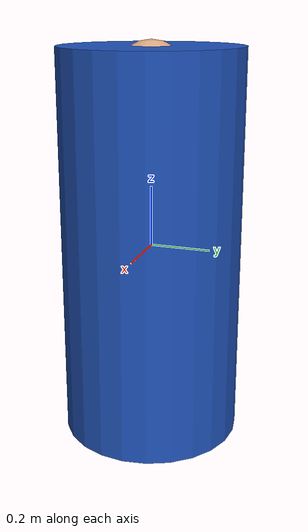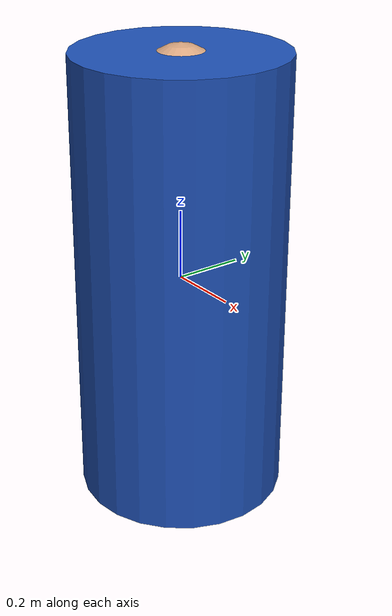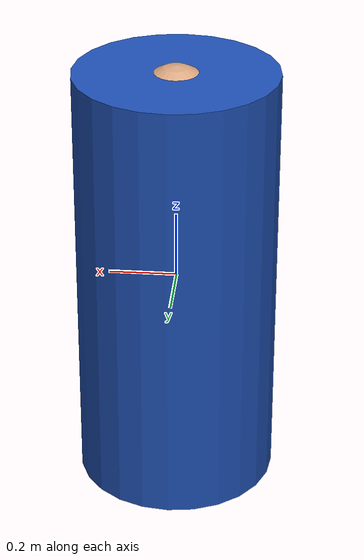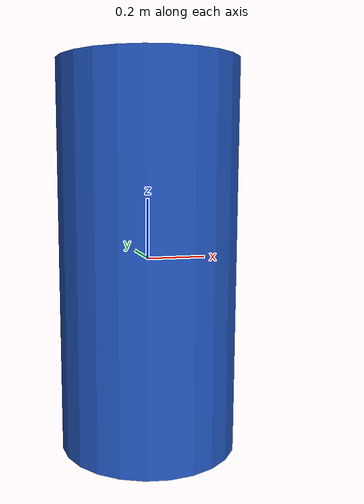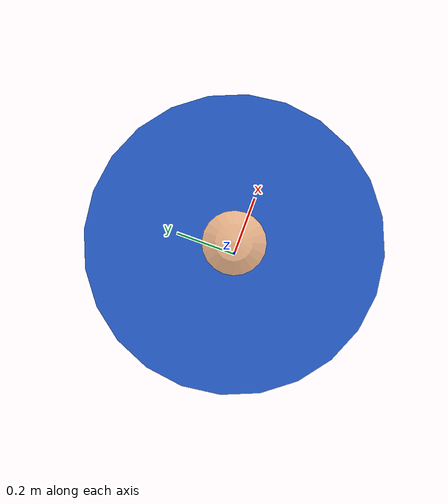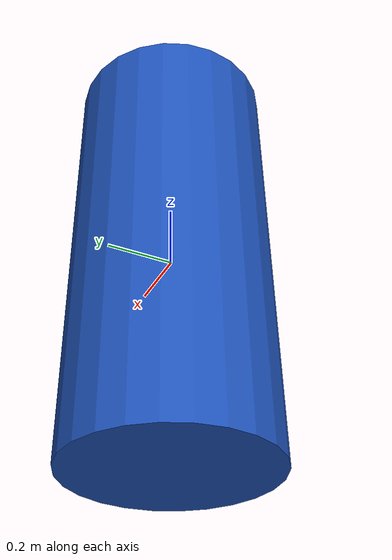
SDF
<?xml version='1.0' encoding='utf-8'?>
<sdf version="1.9">
  <model name="fleetscope_player">
    <!-- Cylinder is 0.3 radius x 1.3 m tall, origin at its center.
         Spawn so it drops a few cm onto the ground. -->
    <link name="body">
      <pose>0 0 0 0 0 0</pose>
      <inertial>
        <mass>70</mass>
        <inertia>
          <ixx>11.4</ixx>
          <iyy>11.4</iyy>
          <izz>3.2</izz>
          <ixy>0</ixy>
          <ixz>0</ixz>
          <iyz>0</iyz>
        </inertia>
      </inertial>
      <collision name="body_collision">
        <!-- Cylinder, not capsule: DART's ODE collision detector does not
             support capsule and aborts in dCollide. -->
        <geometry>
          <cylinder>
            <radius>0.3</radius>
            <length>1.3</length>
          </cylinder>
        </geometry>
        <surface>
          <friction>
            <ode>
              <mu>0.5</mu>
              <mu2>0.5</mu2>
            </ode>
          </friction>
        </surface>
      </collision>
      <visual name="body_visual">
        <geometry>
          <cylinder>
            <radius>0.3</radius>
            <length>1.3</length>
          </cylinder>
        </geometry>
        <material>
          <ambient>0.12 0.32 0.72 1</ambient>
          <diffuse>0.12 0.32 0.72 1</diffuse>
          <specular>0.2 0.2 0.2 1</specular>
        </material>
      </visual>
    </link>

    <!-- Head carries the first-person camera and pitches about the Y axis. -->
    <link name="head">
      <pose>0 0 0.55 0 0 0</pose>
      <inertial>
        <mass>0.3</mass>
        <inertia>
          <ixx>0.001</ixx>
          <iyy>0.001</iyy>
          <izz>0.001</izz>
          <ixy>0</ixy>
          <ixz>0</ixz>
          <iyz>0</iyz>
        </inertia>
      </inertial>
      <visual name="head_visual">
        <geometry>
          <sphere>
            <radius>0.12</radius>
          </sphere>
        </geometry>
        <material>
          <ambient>0.85 0.65 0.5 1</ambient>
          <diffuse>0.85 0.65 0.5 1</diffuse>
          <specular>0.2 0.2 0.2 1</specular>
        </material>
      </visual>
      <sensor name="head_camera" type="camera">
        <pose>0.1 0 0.05 0 0 0</pose>
        <topic>/player/camera/image</topic>
        <update_rate>30</update_rate>
        <always_on>true</always_on>
        <visualize>false</visualize>
        <camera>
          <horizontal_fov>1.4</horizontal_fov>
          <image>
            <width>960</width>
            <height>540</height>
            <format>R8G8B8</format>
          </image>
          <clip>
            <near>0.05</near>
            <far>400</far>
          </clip>
        </camera>
      </sensor>
    </link>

    <joint name="head_pitch" type="revolute">
      <parent>body</parent>
      <child>head</child>
      <pose>0 0 0.55 0 0 0</pose>
      <axis>
        <xyz>0 1 0</xyz>
        <limit>
          <lower>-1.25</lower>
          <upper>1.25</upper>
          <effort>2</effort>
          <velocity>6</velocity>
        </limit>
        <dynamics>
          <damping>0.2</damping>
        </dynamics>
      </axis>
    </joint>

    <plugin filename="PlayerController" name="fleetscope::PlayerController">
      <link_name>body</link_name>
      <topic>/model/fleetscope_player/cmd_vel</topic>
      <jump_speed>4.0</jump_speed>
      <max_speed>7.0</max_speed>
      <max_yaw_rate>8.0</max_yaw_rate>
    </plugin>

    <plugin filename="libignition-gazebo-joint-position-controller-system.so"
            name="ignition::gazebo::systems::JointPositionController">
      <joint_name>head_pitch</joint_name>
      <!-- Explicit topic: the default would be .../head_pitch/0/cmd_pos,
           whose all-numeric token is an invalid ROS 2 topic name, so the
           ros_gz_bridge could not subscribe to it. -->
      <topic>/player/head_pitch/cmd_pos</topic>
      <p_gain>20</p_gain>
      <i_gain>0.5</i_gain>
      <d_gain>1</d_gain>
    </plugin>
  </model>
</sdf>
